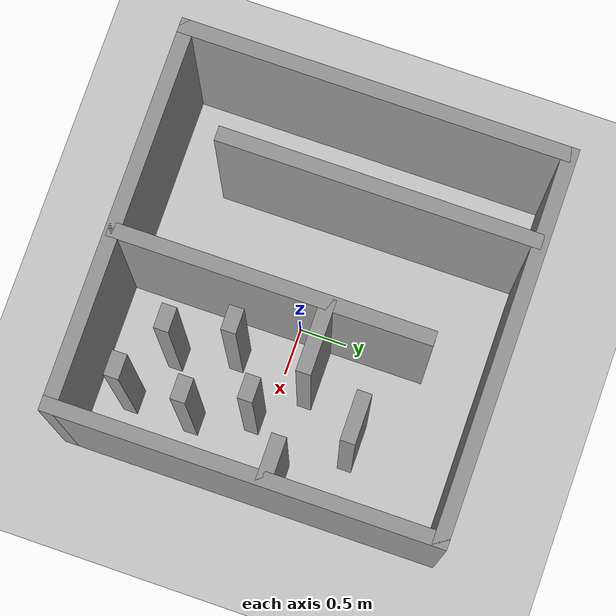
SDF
<sdf version="1.7">
 <world name="default">
  <light name="sun" type="directional">
   <pose>0 0 10 0 -0 0</pose>
   <diffuse>0.8 0.8 0.8 1</diffuse>
   <specular>0.2 0.2 0.2 1</specular>
   <attenuation>
    <range>1000</range>
    <constant>0.9</constant>
    <linear>0.01</linear>
    <quadratic>0.001</quadratic>
   </attenuation>
   <direction>-0.5 0.1 -0.9</direction>
   <spot><inner_angle>0</inner_angle><outer_angle>0</outer_angle><falloff>0</falloff></spot>
  </light>
  <model name="ground_plane">
   <static>1</static>
   <link name="link">
    <collision name="collision">
     <geometry><plane><normal>0 0 1</normal><size>100 100</size></plane></geometry>
     <surface>
      <contact><collide_bitmask>65535</collide_bitmask></contact>
      <friction><ode><mu>100</mu><mu2>50</mu2></ode></friction>
     </surface>
    </collision>
    <visual name="visual">
     <cast_shadows>0</cast_shadows>
     <geometry><plane><normal>0 0 1</normal><size>100 100</size></plane></geometry>
     <material>
      <script><uri>file://media/materials/scripts/gazebo.material</uri><name>Gazebo/Grey</name></script>
     </material>
    </visual>
   </link>
  </model>
  <gravity>0 0 -9.8</gravity>
  <magnetic_field>6e-06 2.3e-05 -4.2e-05</magnetic_field>
  <atmosphere type="adiabatic"/>
  <physics type="ode">
   <max_step_size>0.001</max_step_size>
   <real_time_factor>1</real_time_factor>
   <real_time_update_rate>40000</real_time_update_rate>
  </physics>
  <scene><ambient>0.4 0.4 0.4 1</ambient><background>0.7 0.7 0.7 1</background><shadows>1</shadows></scene>
  <spherical_coordinates>
   <surface_model>EARTH_WGS84</surface_model>
   <latitude_deg>0</latitude_deg>
   <longitude_deg>0</longitude_deg>
   <elevation>0</elevation>
   <heading_deg>0</heading_deg>
  </spherical_coordinates>
  <model name="obstacle_maze">
   <pose>-0.107361 0.796694 0 0 -0 0</pose>
   <link name="Wall_0">
    <collision name="Wall_0_Collision">
     <geometry><box><size>4 0.15 2.5</size></box></geometry>
     <pose>0 0 1.25 0 -0 0</pose>
    </collision>
    <visual name="Wall_0_Visual">
     <pose>0 0 1.25 0 -0 0</pose>
     <geometry><box><size>4 0.15 2.5</size></box></geometry>
     <material>
      <script><uri>file://media/materials/scripts/gazebo.material</uri><name>Gazebo/Grey</name></script>
      <ambient>1 1 1 1</ambient>
     </material>
     <meta><layer>0</layer></meta>
    </visual>
    <pose>0 1.2125 0 0 -0 0</pose>
   </link>
   <link name="Wall_1">
    <collision name="Wall_1_Collision">
     <geometry><box><size>4 0.15 2.5</size></box></geometry>
     <pose>0 0 1.25 0 -0 0</pose>
    </collision>
    <visual name="Wall_1_Visual">
     <pose>0 0 1.25 0 -0 0</pose>
     <geometry><box><size>4 0.15 2.5</size></box></geometry>
     <material>
      <script><uri>file://media/materials/scripts/gazebo.material</uri><name>Gazebo/Grey</name></script>
      <ambient>1 1 1 1</ambient>
     </material>
     <meta><layer>0</layer></meta>
    </visual>
    <pose>1.925 -0.7125 0 0 -0 -1.5708</pose>
   </link>
   <link name="Wall_12">
    <collision name="Wall_12_Collision">
     <geometry><box><size>3.25 0.15 2.5</size></box></geometry>
     <pose>0 0 1.25 0 -0 0</pose>
    </collision>
    <visual name="Wall_12_Visual">
     <pose>0 0 1.25 0 -0 0</pose>
     <geometry><box><size>3.25 0.15 2.5</size></box></geometry>
     <material>
      <script><uri>file://media/materials/scripts/gazebo.material</uri><name>Gazebo/Grey</name></script>
      <ambient>1 1 1 1</ambient>
     </material>
     <meta><layer>0</layer></meta>
    </visual>
    <pose>-1.035 -0.3975 0 0 -0 -1.5708</pose>
   </link>
   <link name="Wall_17">
    <collision name="Wall_17_Collision">
     <geometry><box><size>3.25 0.15 2.5</size></box></geometry>
     <pose>0 0 1.25 0 -0 0</pose>
    </collision>
    <visual name="Wall_17_Visual">
     <pose>0 0 1.25 0 -0 0</pose>
     <geometry><box><size>3.25 0.15 2.5</size></box></geometry>
     <material>
      <script><uri>file://media/materials/scripts/gazebo.material</uri><name>Gazebo/Grey</name></script>
      <ambient>1 1 1 1</ambient>
     </material>
     <meta><layer>0</layer></meta>
    </visual>
    <pose>0.165 -1.0575 0 0 -0 1.5708</pose>
   </link>
   <link name="Wall_2">
    <collision name="Wall_2_Collision">
     <geometry><box><size>4 0.15 2.5</size></box></geometry>
     <pose>0 0 1.25 0 -0 0</pose>
    </collision>
    <visual name="Wall_2_Visual">
     <pose>0 0 1.25 0 -0 0</pose>
     <geometry><box><size>4 0.15 2.5</size></box></geometry>
     <material>
      <script><uri>file://media/materials/scripts/gazebo.material</uri><name>Gazebo/Grey</name></script>
      <ambient>1 1 1 1</ambient>
     </material>
     <meta><layer>0</layer></meta>
    </visual>
    <pose>0 -2.6375 0 0 -0 3.14159</pose>
   </link>
   <link name="Wall_3">
    <collision name="Wall_3_Collision">
     <geometry><box><size>4 0.15 2.5</size></box></geometry>
     <pose>0 0 1.25 0 -0 0</pose>
    </collision>
    <visual name="Wall_3_Visual">
     <pose>0 0 1.25 0 -0 0</pose>
     <geometry><box><size>4 0.15 2.5</size></box></geometry>
     <material>
      <script><uri>file://media/materials/scripts/gazebo.material</uri><name>Gazebo/Grey</name></script>
      <ambient>1 1 1 1</ambient>
     </material>
     <meta><layer>0</layer></meta>
    </visual>
    <pose>-1.925 -0.7125 0 0 -0 1.5708</pose>
   </link>
   <link name="Wall_37">
    <collision name="Wall_37_Collision">
     <geometry><box><size>0.5 0.15 2.5</size></box></geometry>
     <pose>0 0 1.25 0 -0 0</pose>
    </collision>
    <visual name="Wall_37_Visual">
     <pose>0 0 1.25 0 -0 0</pose>
     <geometry><box><size>0.5 0.15 2.5</size></box></geometry>
     <material>
      <script><uri>file://media/materials/scripts/gazebo.material</uri><name>Gazebo/Grey</name></script>
      <ambient>1 1 1 1</ambient>
     </material>
     <meta><layer>0</layer></meta>
    </visual>
    <pose>1.1 0.1025 0 0 -0 0</pose>
   </link>
   <link name="Wall_41">
    <collision name="Wall_41_Collision">
     <geometry><box><size>0.75 0.15 2.5</size></box></geometry>
     <pose>0 0 1.25 0 -0 0</pose>
    </collision>
    <visual name="Wall_41_Visual">
     <pose>0 0 1.25 0 -0 0</pose>
     <geometry><box><size>0.75 0.15 2.5</size></box></geometry>
     <material>
      <script><uri>file://media/materials/scripts/gazebo.material</uri><name>Gazebo/Grey</name></script>
      <ambient>1 1 1 1</ambient>
     </material>
     <meta><layer>0</layer></meta>
    </visual>
    <pose>0.495 -0.4975 0 0 -0 0</pose>
   </link>
   <link name="Wall_43">
    <collision name="Wall_43_Collision">
     <geometry><box><size>0.5 0.15 2.5</size></box></geometry>
     <pose>0 0 1.25 0 -0 0</pose>
    </collision>
    <visual name="Wall_43_Visual">
     <pose>0 0 1.25 0 -0 0</pose>
     <geometry><box><size>0.5 0.15 2.5</size></box></geometry>
     <material>
      <script><uri>file://media/materials/scripts/gazebo.material</uri><name>Gazebo/Grey</name></script>
      <ambient>1 1 1 1</ambient>
     </material>
     <meta><layer>0</layer></meta>
    </visual>
    <pose>1.74 -0.5175 0 0 -0 3.14159</pose>
   </link>
   <link name="Wall_45">
    <collision name="Wall_45_Collision">
     <geometry><box><size>0.25 0.15 2.5</size></box></geometry>
     <pose>0 0 1.25 0 -0 0</pose>
    </collision>
    <visual name="Wall_45_Visual">
     <pose>0 0 1.25 0 -0 0</pose>
     <geometry><box><size>0.25 0.15 2.5</size></box></geometry>
     <material>
      <script><uri>file://media/materials/scripts/gazebo.material</uri><name>Gazebo/Grey</name></script>
      <ambient>1 1 1 1</ambient>
     </material>
     <meta><layer>0</layer></meta>
    </visual>
    <pose>0.605 -1.2875 0 0 -0 0</pose>
   </link>
   <link name="Wall_47">
    <collision name="Wall_47_Collision">
     <geometry><box><size>0.25 0.15 2.5</size></box></geometry>
     <pose>0 0 1.25 0 -0 0</pose>
    </collision>
    <visual name="Wall_47_Visual">
     <pose>0 0 1.25 0 -0 0</pose>
     <geometry><box><size>0.25 0.15 2.5</size></box></geometry>
     <material>
      <script><uri>file://media/materials/scripts/gazebo.material</uri><name>Gazebo/Grey</name></script>
      <ambient>1 1 1 1</ambient>
     </material>
     <meta><layer>0</layer></meta>
    </visual>
    <pose>1.375 -1.5175 0 0 -0 0</pose>
   </link>
   <link name="Wall_49">
    <collision name="Wall_49_Collision">
     <geometry><box><size>0.25 0.15 2.5</size></box></geometry>
     <pose>0 0 1.25 0 -0 0</pose>
    </collision>
    <visual name="Wall_49_Visual">
     <pose>0 0 1.25 0 -0 0</pose>
     <geometry><box><size>0.25 0.15 2.5</size></box></geometry>
     <material>
      <script><uri>file://media/materials/scripts/gazebo.material</uri><name>Gazebo/Grey</name></script>
      <ambient>1 1 1 1</ambient>
     </material>
     <meta><layer>0</layer></meta>
    </visual>
    <pose>0.795 -1.8875 0 0 -0 0</pose>
   </link>
   <link name="Wall_51">
    <collision name="Wall_51_Collision">
     <geometry><box><size>0.25 0.15 2.5</size></box></geometry>
     <pose>0 0 1.25 0 -0 0</pose>
    </collision>
    <visual name="Wall_51_Visual">
     <pose>0 0 1.25 0 -0 0</pose>
     <geometry><box><size>0.25 0.15 2.5</size></box></geometry>
     <material>
      <script><uri>file://media/materials/scripts/gazebo.material</uri><name>Gazebo/Grey</name></script>
      <ambient>1 1 1 1</ambient>
     </material>
     <meta><layer>0</layer></meta>
    </visual>
    <pose>1.365 -2.1775 0 0 -0 0</pose>
   </link>
   <link name="Wall_53">
    <collision name="Wall_53_Collision">
     <geometry><box><size>0.25 0.15 2.5</size></box></geometry>
     <pose>0 0 1.25 0 -0 0</pose>
    </collision>
    <visual name="Wall_53_Visual">
     <pose>0 0 1.25 0 -0 0</pose>
     <geometry><box><size>0.25 0.15 2.5</size></box></geometry>
     <material>
      <script><uri>file://media/materials/scripts/gazebo.material</uri><name>Gazebo/Grey</name></script>
      <ambient>1 1 1 1</ambient>
     </material>
     <meta><layer>0</layer></meta>
    </visual>
    <pose>1.165 -0.9275 0 0 -0 0</pose>
   </link>
   <static>1</static>
  </model>
 </world>
</sdf>
